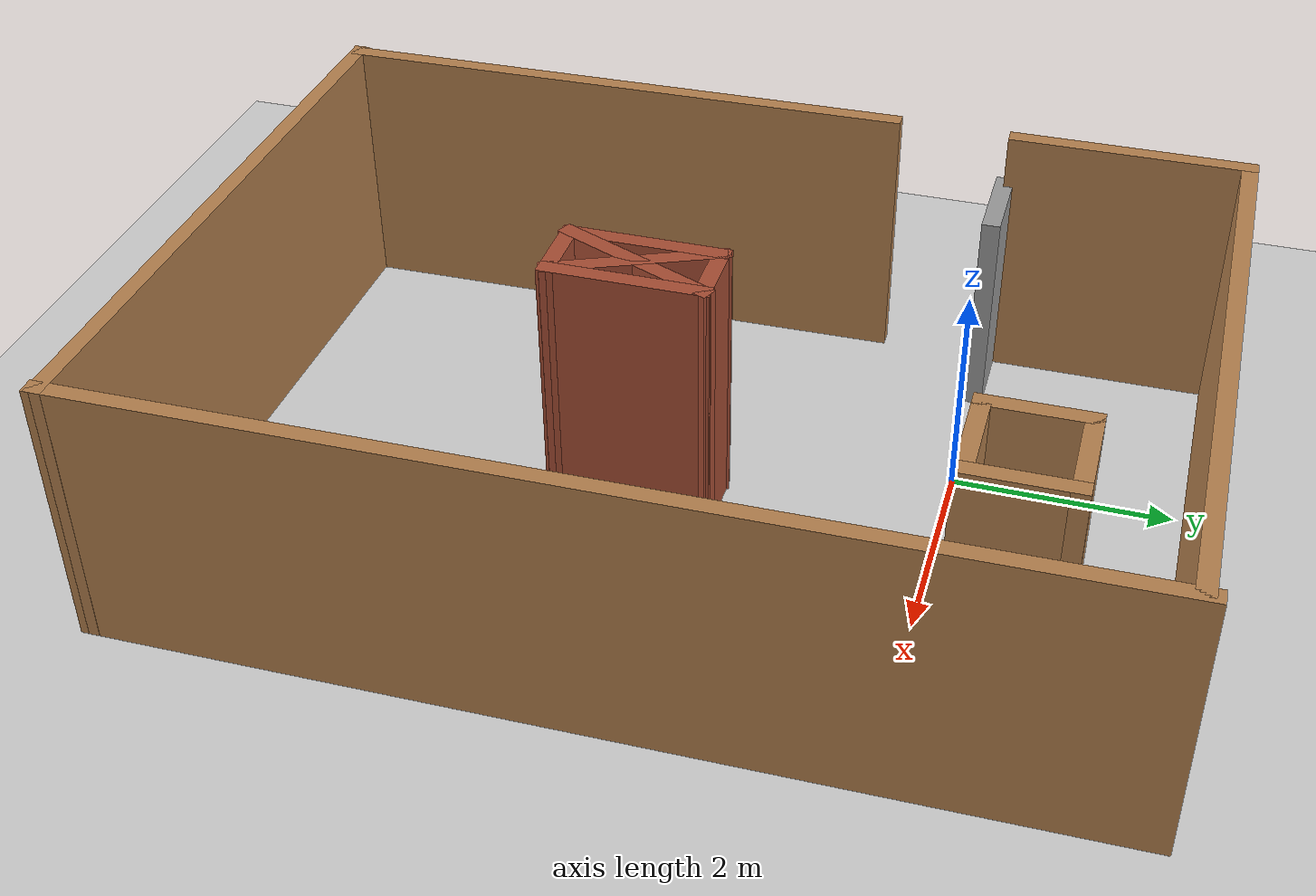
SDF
<sdf version="1.7">
 <world name="default">
  <light name="sun" type="directional">
   <pose>0 0 10 0 -0 0</pose>
   <diffuse>0.8 0.8 0.8 1</diffuse>
   <specular>0.2 0.2 0.2 1</specular>
   <attenuation>
    <range>1000</range>
    <constant>0.9</constant>
    <linear>0.01</linear>
    <quadratic>0.001</quadratic>
   </attenuation>
   <direction>-0.5 0.1 -0.9</direction>
   <spot><inner_angle>0</inner_angle><outer_angle>0</outer_angle><falloff>0</falloff></spot>
  </light>
  <model name="ground_plane">
   <static>1</static>
   <link name="link">
    <collision name="collision">
     <geometry><plane><normal>0 0 1</normal><size>100 100</size></plane></geometry>
     <surface>
      <contact><collide_bitmask>65535</collide_bitmask></contact>
      <friction><ode><mu>100</mu><mu2>50</mu2></ode></friction>
     </surface>
    </collision>
    <visual name="visual">
     <cast_shadows>0</cast_shadows>
     <geometry><plane><normal>0 0 1</normal><size>100 100</size></plane></geometry>
     <material>
      <script><uri>file://media/materials/scripts/gazebo.material</uri><name>Gazebo/Grey</name></script>
     </material>
    </visual>
   </link>
  </model>
  <gravity>0 0 -9.8</gravity>
  <magnetic_field>6e-06 2.3e-05 -4.2e-05</magnetic_field>
  <atmosphere type="adiabatic"/>
  <physics type="ode">
   <max_step_size>0.001</max_step_size>
   <real_time_factor>1</real_time_factor>
   <real_time_update_rate>1000</real_time_update_rate>
  </physics>
  <scene><ambient>0.4 0.4 0.4 1</ambient><background>0.7 0.7 0.7 1</background><shadows>1</shadows></scene>
  <spherical_coordinates>
   <surface_model>EARTH_WGS84</surface_model>
   <latitude_deg>0</latitude_deg>
   <longitude_deg>0</longitude_deg>
   <elevation>0</elevation>
   <heading_deg>0</heading_deg>
  </spherical_coordinates>
  <model name="world">
   <pose>0.902796 -2.17686 0 0 -0 0</pose>
   <link name="Door_0">
    <collision name="Door_0_Collision">
     <geometry><box><size>0.9 0.17 2</size></box></geometry>
     <pose>0 0 1 0 -0 0</pose>
    </collision>
    <visual name="Door_0_Visual">
     <pose>0 0 1 0 -0 0</pose>
     <geometry><box><size>0.9 0.17 2</size></box></geometry>
     <material>
      <script><uri>file://media/materials/scripts/gazebo.material</uri><name>Gazebo/Grey</name></script>
     </material>
    </visual>
    <pose>-2.61688 2.15728 0 0 -0 0</pose>
   </link>
   <link name="Wall_0">
    <collision name="Wall_0_Collision">
     <geometry><box><size>5.54612 0.15 2.5</size></box></geometry>
     <pose>0 0 1.25 0 -0 0</pose>
    </collision>
    <visual name="Wall_0_Visual">
     <pose>0 0 1.25 0 -0 0</pose>
     <geometry><box><size>5.54612 0.15 2.5</size></box></geometry>
     <material>
      <script><uri>file://media/materials/scripts/gazebo.material</uri><name>Gazebo/Wood</name></script>
      <ambient>1 1 1 1</ambient>
     </material>
     <meta><layer>0</layer></meta>
    </visual>
    <pose>-2.96517 -1.63523 0 0 -0 1.58198</pose>
   </link>
   <link name="Wall_17">
    <collision name="Wall_17_Collision">
     <geometry><box><size>0.75 0.15 2.5</size></box></geometry>
     <pose>0 0 1.25 0 -0 0</pose>
    </collision>
    <visual name="Wall_17_Visual">
     <pose>0 0 1.25 0 -0 0</pose>
     <geometry><box><size>0.75 0.15 2.5</size></box></geometry>
     <material>
      <script><uri>file://media/materials/scripts/gazebo.material</uri><name>Gazebo/Bricks</name></script>
      <ambient>1 1 1 1</ambient>
     </material>
     <meta><layer>0</layer></meta>
    </visual>
    <pose>0.024246 0.13738 0 0 -0 0</pose>
   </link>
   <link name="Wall_18">
    <collision name="Wall_18_Collision">
     <geometry><box><size>1.5 0.15 2.5</size></box></geometry>
     <pose>0 0 1.25 0 -0 0</pose>
    </collision>
    <visual name="Wall_18_Visual">
     <pose>0 0 1.25 0 -0 0</pose>
     <geometry><box><size>1.5 0.15 2.5</size></box></geometry>
     <material>
      <script><uri>file://media/materials/scripts/gazebo.material</uri><name>Gazebo/Bricks</name></script>
      <ambient>1 1 1 1</ambient>
     </material>
     <meta><layer>0</layer></meta>
    </visual>
    <pose>0.324246 -0.53762 0 0 -0 -1.5708</pose>
   </link>
   <link name="Wall_19">
    <collision name="Wall_19_Collision">
     <geometry><box><size>0.75 0.15 2.5</size></box></geometry>
     <pose>0 0 1.25 0 -0 0</pose>
    </collision>
    <visual name="Wall_19_Visual">
     <pose>0 0 1.25 0 -0 0</pose>
     <geometry><box><size>0.75 0.15 2.5</size></box></geometry>
     <material>
      <script><uri>file://media/materials/scripts/gazebo.material</uri><name>Gazebo/Bricks</name></script>
      <ambient>1 1 1 1</ambient>
     </material>
     <meta><layer>0</layer></meta>
    </visual>
    <pose>0.024246 -1.21262 0 0 -0 3.14159</pose>
   </link>
   <link name="Wall_2">
    <collision name="Wall_2_Collision">
     <geometry><box><size>6.10087 0.15 2.5</size></box></geometry>
     <pose>0 0 1.25 0 -0 0</pose>
    </collision>
    <visual name="Wall_2_Visual">
     <pose>0 0 1.25 0 -0 0</pose>
     <geometry><box><size>6.10087 0.15 2.5</size></box></geometry>
     <material>
      <script><uri>file://media/materials/scripts/gazebo.material</uri><name>Gazebo/Wood</name></script>
      <ambient>1 1 1 1</ambient>
     </material>
     <meta><layer>0</layer></meta>
    </visual>
    <pose>0.020172 -4.36329 0 0 -0 -0.00338</pose>
   </link>
   <link name="Wall_22">
    <collision name="Wall_22_Collision">
     <geometry><box><size>1.62733 0.15 2.5</size></box></geometry>
     <pose>0 0 1.25 0 -0 0</pose>
    </collision>
    <visual name="Wall_22_Visual">
     <pose>0 0 1.25 0 -0 0</pose>
     <geometry><box><size>1.62733 0.15 2.5</size></box></geometry>
     <material>
      <script><uri>file://media/materials/scripts/gazebo.material</uri><name>Gazebo/Bricks</name></script>
      <ambient>1 1 1 1</ambient>
     </material>
     <meta><layer>0</layer></meta>
    </visual>
    <pose>0.024246 -0.53762 0 0 -0 -1.15257</pose>
   </link>
   <link name="Wall_24">
    <collision name="Wall_24_Collision">
     <geometry><box><size>1.62733 0.15 2.5</size></box></geometry>
     <pose>0 0 1.25 0 -0 0</pose>
    </collision>
    <visual name="Wall_24_Visual">
     <pose>0 0 1.25 0 -0 0</pose>
     <geometry><box><size>1.62733 0.15 2.5</size></box></geometry>
     <material>
      <script><uri>file://media/materials/scripts/gazebo.material</uri><name>Gazebo/Bricks</name></script>
      <ambient>1 1 1 1</ambient>
     </material>
     <meta><layer>0</layer></meta>
    </visual>
    <pose>0.024246 -0.53762 0 0 -0 -1.98902</pose>
   </link>
   <link name="Wall_26">
    <collision name="Wall_26_Collision">
     <geometry><box><size>1 0.15 2.5</size></box></geometry>
     <pose>0 0 1.25 0 -0 0</pose>
    </collision>
    <visual name="Wall_26_Visual">
     <pose>0 0 1.25 0 -0 0</pose>
     <geometry><box><size>1 0.15 2.5</size></box></geometry>
     <material>
      <script><uri>file://media/materials/scripts/gazebo.material</uri><name>Gazebo/Wood</name></script>
      <ambient>1 1 1 1</ambient>
     </material>
     <meta><layer>0</layer></meta>
    </visual>
    <pose>1.17242 2.9885 0 0 -0 -1.5708</pose>
   </link>
   <link name="Wall_27">
    <collision name="Wall_27_Collision">
     <geometry><box><size>1 0.15 2.5</size></box></geometry>
     <pose>0 0 1.25 0 -0 0</pose>
    </collision>
    <visual name="Wall_27_Visual">
     <pose>0 0 1.25 0 -0 0</pose>
     <geometry><box><size>1 0.15 2.5</size></box></geometry>
     <material>
      <script><uri>file://media/materials/scripts/gazebo.material</uri><name>Gazebo/Wood</name></script>
      <ambient>1 1 1 1</ambient>
     </material>
     <meta><layer>0</layer></meta>
    </visual>
    <pose>1.59742 2.5635 0 0 -0 0</pose>
   </link>
   <link name="Wall_28">
    <collision name="Wall_28_Collision">
     <geometry><box><size>1 0.15 2.5</size></box></geometry>
     <pose>0 0 1.25 0 -0 0</pose>
    </collision>
    <visual name="Wall_28_Visual">
     <pose>0 0 1.25 0 -0 0</pose>
     <geometry><box><size>1 0.15 2.5</size></box></geometry>
     <material>
      <script><uri>file://media/materials/scripts/gazebo.material</uri><name>Gazebo/Wood</name></script>
      <ambient>1 1 1 1</ambient>
     </material>
     <meta><layer>0</layer></meta>
    </visual>
    <pose>2.02242 2.9885 0 0 -0 1.5708</pose>
   </link>
   <link name="Wall_29">
    <collision name="Wall_29_Collision">
     <geometry><box><size>1 0.15 2.5</size></box></geometry>
     <pose>0 0 1.25 0 -0 0</pose>
    </collision>
    <visual name="Wall_29_Visual">
     <pose>0 0 1.25 0 -0 0</pose>
     <geometry><box><size>1 0.15 2.5</size></box></geometry>
     <material>
      <script><uri>file://media/materials/scripts/gazebo.material</uri><name>Gazebo/Wood</name></script>
      <ambient>1 1 1 1</ambient>
     </material>
     <meta><layer>0</layer></meta>
    </visual>
    <pose>1.59742 3.4135 0 0 -0 3.14159</pose>
   </link>
   <link name="Wall_31">
    <collision name="Wall_31_Collision">
     <geometry><box><size>1.5 0.15 2.5</size></box></geometry>
     <pose>0 0 1.25 0 -0 0</pose>
    </collision>
    <visual name="Wall_31_Visual">
     <pose>0 0 1.25 0 -0 0</pose>
     <geometry><box><size>1.5 0.15 2.5</size></box></geometry>
     <material>
      <script><uri>file://media/materials/scripts/gazebo.material</uri><name>Gazebo/Bricks</name></script>
      <ambient>1 1 1 1</ambient>
     </material>
     <meta><layer>0</layer></meta>
    </visual>
    <pose>-0.275754 -0.53762 0 0 -0 -1.5708</pose>
   </link>
   <link name="Wall_4">
    <collision name="Wall_4_Collision">
     <geometry><box><size>6 0.15 2.5</size></box></geometry>
     <pose>0 0 1.25 0 -0 0</pose>
    </collision>
    <visual name="Wall_4_Visual">
     <pose>0 0 1.25 0 -0 0</pose>
     <geometry><box><size>6 0.15 2.5</size></box></geometry>
     <material>
      <script><uri>file://media/materials/scripts/gazebo.material</uri><name>Gazebo/Wood</name></script>
      <ambient>1 1 1 1</ambient>
     </material>
     <meta><layer>0</layer></meta>
    </visual>
    <pose>-0.054187 4.33312 0 0 -0 0</pose>
   </link>
   <link name="Wall_5">
    <collision name="Wall_5_Collision">
     <geometry><box><size>8.93732 0.15 2.5</size></box></geometry>
     <pose>0 0 1.25 0 -0 0</pose>
    </collision>
    <visual name="Wall_5_Visual">
     <pose>0 0 1.25 0 -0 0</pose>
     <geometry><box><size>8.93732 0.15 2.5</size></box></geometry>
     <material>
      <script><uri>file://media/materials/scripts/gazebo.material</uri><name>Gazebo/Wood</name></script>
      <ambient>1 1 1 1</ambient>
     </material>
     <meta><layer>0</layer></meta>
    </visual>
    <pose>2.95325 0 0 0 -0 -1.56119</pose>
   </link>
   <link name="Wall_8">
    <collision name="Wall_8_Collision">
     <geometry><box><size>2.25 0.15 2.5</size></box></geometry>
     <pose>0 0 1.25 0 -0 0</pose>
    </collision>
    <visual name="Wall_8_Visual">
     <pose>0 0 1.25 0 -0 0</pose>
     <geometry><box><size>2.25 0.15 2.5</size></box></geometry>
     <material>
      <script><uri>file://media/materials/scripts/gazebo.material</uri><name>Gazebo/Wood</name></script>
      <ambient>1 1 1 1</ambient>
     </material>
     <meta><layer>0</layer></meta>
    </visual>
    <pose>-2.97919 3.28312 0 0 -0 -1.5708</pose>
   </link>
   <static>1</static>
  </model>
  <model name="my_ball">
   <link name="link_0">
    <inertial>
     <mass>1</mass>
     <inertia><ixx>0.1</ixx><ixy>0</ixy><ixz>0</ixz><iyy>0.1</iyy><iyz>0</iyz><izz>0.1</izz></inertia>
    </inertial>
    <visual name="visual">
     <geometry><sphere><radius>0.1</radius></sphere></geometry>
     <material>
      <lighting>1</lighting>
      <script><uri>file://media/materials/scripts/gazebo.material</uri><name>Gazebo/Grey</name></script>
      <shader type="pixel"><normal_map>__default__</normal_map></shader>
      <ambient>1 1 1 1</ambient>
      <diffuse>1 1 1 1</diffuse>
      <specular>1 1 1 1</specular>
      <emissive>1 1 1 1</emissive>
     </material>
    </visual>
    <collision name="collision">
     <geometry><sphere><radius>0.1</radius></sphere></geometry>
     <surface>
      <friction>
       <ode><mu>1</mu><mu2>1</mu2><fdir1>0 0 0</fdir1><slip1>0</slip1><slip2>0</slip2></ode>
       <torsional>
        <coefficient>1</coefficient>
        <patch_radius>0</patch_radius>
        <surface_radius>0</surface_radius>
        <use_patch_radius>1</use_patch_radius>
        <ode><slip>0</slip></ode>
       </torsional>
      </friction>
      <bounce><restitution_coefficient>0</restitution_coefficient><threshold>1e+06</threshold></bounce>
      <contact>
       <collide_without_contact>0</collide_without_contact>
       <collide_without_contact_bitmask>1</collide_without_contact_bitmask>
       <collide_bitmask>1</collide_bitmask>
       <ode>
        <soft_cfm>0</soft_cfm>
        <soft_erp>0.2</soft_erp>
        <kp>1e+13</kp>
        <kd>1</kd>
        <max_vel>0.01</max_vel>
        <min_depth>0</min_depth>
       </ode>
       <bullet>
        <split_impulse>1</split_impulse>
        <split_impulse_penetration_threshold>-0.01</split_impulse_penetration_threshold>
        <soft_cfm>0</soft_cfm>
        <soft_erp>0.2</soft_erp>
        <kp>1e+13</kp>
        <kd>1</kd>
       </bullet>
      </contact>
     </surface>
    </collision>
   </link>
   <static>0</static>
   <pose>1.68937 -4.45087 0.1 0 -0 0</pose>
  </model>
 </world>
</sdf>
